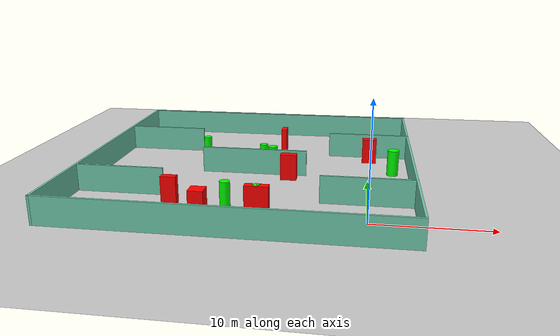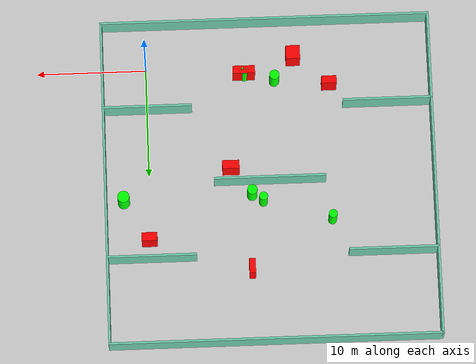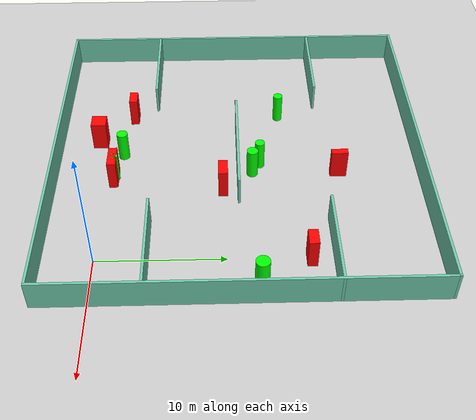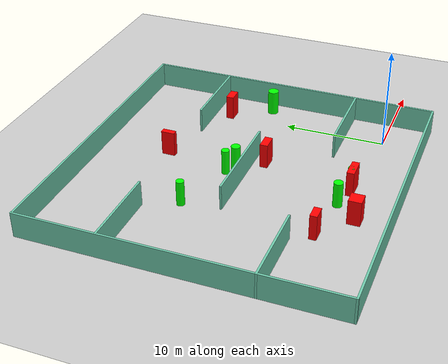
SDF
<sdf version="1.7">
 <world name="default">
  <light name="sun" type="directional">
   <pose>0 0 10 0 -0 0</pose>
   <diffuse>0.8 0.8 0.8 1</diffuse>
   <specular>0.2 0.2 0.2 1</specular>
   <attenuation>
    <range>1000</range>
    <constant>0.9</constant>
    <linear>0.01</linear>
    <quadratic>0.001</quadratic>
   </attenuation>
   <direction>-0.5 0.1 -0.9</direction>
   <spot><inner_angle>0</inner_angle><outer_angle>0</outer_angle><falloff>0</falloff></spot>
  </light>
  <model name="ground_plane">
   <static>1</static>
   <link name="link">
    <collision name="collision">
     <geometry><plane><normal>0 0 1</normal><size>100 100</size></plane></geometry>
     <surface>
      <contact><collide_bitmask>65535</collide_bitmask></contact>
      <friction><ode><mu>100</mu><mu2>50</mu2></ode></friction>
     </surface>
    </collision>
    <visual name="visual">
     <cast_shadows>0</cast_shadows>
     <geometry><plane><normal>0 0 1</normal><size>100 100</size></plane></geometry>
     <material>
      <script><uri>file://media/materials/scripts/gazebo.material</uri><name>Gazebo/Grey</name></script>
     </material>
    </visual>
   </link>
  </model>
  <gravity>0 0 -9.8</gravity>
  <magnetic_field>6e-06 2.3e-05 -4.2e-05</magnetic_field>
  <atmosphere type="adiabatic"/>
  <physics type="ode">
   <max_step_size>0.001</max_step_size>
   <real_time_factor>1</real_time_factor>
   <real_time_update_rate>1000</real_time_update_rate>
  </physics>
  <scene><ambient>0.4 0.4 0.4 1</ambient><background>0.7 0.7 0.7 1</background><shadows>1</shadows></scene>
  <spherical_coordinates>
   <surface_model>EARTH_WGS84</surface_model>
   <latitude_deg>0</latitude_deg>
   <longitude_deg>0</longitude_deg>
   <elevation>0</elevation>
   <heading_deg>0</heading_deg>
  </spherical_coordinates>
  <model name="my_base_walls">
   <link name="Wall_10">
    <collision name="Wall_10_Collision">
     <geometry><box><size>8.2 0.2 2.5</size></box></geometry>
     <pose>0 0 1.25 0 -0 0</pose>
    </collision>
    <visual name="Wall_10_Visual">
     <pose>0 0 1.25 0 -0 0</pose>
     <geometry><box><size>8.2 0.2 2.5</size></box></geometry>
     <material>
      <script><uri>file://media/materials/scripts/gazebo.material</uri><name>Gazebo/Grey</name></script>
      <ambient>0.435294 0.796078 0.67451 1</ambient>
     </material>
     <meta><layer>0</layer></meta>
    </visual>
    <pose>-11 -7 0 0 -0 0</pose>
   </link>
   <link name="Wall_12">
    <collision name="Wall_12_Collision">
     <geometry><box><size>8.2 0.2 2.5</size></box></geometry>
     <pose>0 0 1.25 0 -0 0</pose>
    </collision>
    <visual name="Wall_12_Visual">
     <pose>0 0 1.25 0 -0 0</pose>
     <geometry><box><size>8.2 0.2 2.5</size></box></geometry>
     <material>
      <script><uri>file://media/materials/scripts/gazebo.material</uri><name>Gazebo/Grey</name></script>
      <ambient>0.435294 0.796078 0.67451 1</ambient>
     </material>
     <meta><layer>0</layer></meta>
    </visual>
    <pose>-11 7 0 0 -0 0</pose>
   </link>
   <link name="Wall_14">
    <collision name="Wall_14_Collision">
     <geometry><box><size>8.2 0.2 2.5</size></box></geometry>
     <pose>0 0 1.25 0 -0 0</pose>
    </collision>
    <visual name="Wall_14_Visual">
     <pose>0 0 1.25 0 -0 0</pose>
     <geometry><box><size>8.2 0.2 2.5</size></box></geometry>
     <material>
      <script><uri>file://media/materials/scripts/gazebo.material</uri><name>Gazebo/Grey</name></script>
      <ambient>0.435294 0.796078 0.67451 1</ambient>
     </material>
     <meta><layer>0</layer></meta>
    </visual>
    <pose>11 7 0 0 -0 3.14159</pose>
   </link>
   <link name="Wall_16">
    <collision name="Wall_16_Collision">
     <geometry><box><size>10.2 0.2 2.5</size></box></geometry>
     <pose>0 0 1.25 0 -0 0</pose>
    </collision>
    <visual name="Wall_16_Visual">
     <pose>0 0 1.25 0 -0 0</pose>
     <geometry><box><size>10.2 0.2 2.5</size></box></geometry>
     <material>
      <script><uri>file://media/materials/scripts/gazebo.material</uri><name>Gazebo/Grey</name></script>
      <ambient>0.435294 0.796078 0.67451 1</ambient>
     </material>
     <meta><layer>0</layer></meta>
    </visual>
    <pose>0 0 0 0 -0 3.14159</pose>
   </link>
   <link name="Wall_2">
    <collision name="Wall_2_Collision">
     <geometry><box><size>30.2 0.2 2.5</size></box></geometry>
     <pose>0 0 1.25 0 -0 0</pose>
    </collision>
    <visual name="Wall_2_Visual">
     <pose>0 0 1.25 0 -0 0</pose>
     <geometry><box><size>30.2 0.2 2.5</size></box></geometry>
     <material>
      <script><uri>file://media/materials/scripts/gazebo.material</uri><name>Gazebo/Grey</name></script>
      <ambient>0.435294 0.796078 0.67451 1</ambient>
     </material>
     <meta><layer>0</layer></meta>
    </visual>
    <pose>0 -15 0 0 -0 3.14159</pose>
   </link>
   <link name="Wall_3">
    <collision name="Wall_3_Collision">
     <geometry><box><size>30.2 0.2 2.5</size></box></geometry>
     <pose>0 0 1.25 0 -0 0</pose>
    </collision>
    <visual name="Wall_3_Visual">
     <pose>0 0 1.25 0 -0 0</pose>
     <geometry><box><size>30.2 0.2 2.5</size></box></geometry>
     <material>
      <script><uri>file://media/materials/scripts/gazebo.material</uri><name>Gazebo/Grey</name></script>
      <ambient>0.435294 0.796078 0.67451 1</ambient>
     </material>
     <meta><layer>0</layer></meta>
    </visual>
    <pose>-15 0 0 0 -0 1.5708</pose>
   </link>
   <link name="Wall_4">
    <collision name="Wall_4_Collision">
     <geometry><box><size>30.2 0.2 2.5</size></box></geometry>
     <pose>0 0 1.25 0 -0 0</pose>
    </collision>
    <visual name="Wall_4_Visual">
     <pose>0 0 1.25 0 -0 0</pose>
     <geometry><box><size>30.2 0.2 2.5</size></box></geometry>
     <material>
      <script><uri>file://media/materials/scripts/gazebo.material</uri><name>Gazebo/Grey</name></script>
      <ambient>0.435294 0.796078 0.67451 1</ambient>
     </material>
     <meta><layer>0</layer></meta>
    </visual>
    <pose>0 15 0 0 -0 0</pose>
   </link>
   <link name="Wall_6">
    <collision name="Wall_6_Collision">
     <geometry><box><size>30.2 0.2 2.5</size></box></geometry>
     <pose>0 0 1.25 0 -0 0</pose>
    </collision>
    <visual name="Wall_6_Visual">
     <pose>0 0 1.25 0 -0 0</pose>
     <geometry><box><size>30.2 0.2 2.5</size></box></geometry>
     <material>
      <script><uri>file://media/materials/scripts/gazebo.material</uri><name>Gazebo/Grey</name></script>
      <ambient>0.435294 0.796078 0.67451 1</ambient>
     </material>
     <meta><layer>0</layer></meta>
    </visual>
    <pose>15 0 0 0 -0 1.5708</pose>
   </link>
   <link name="Wall_8">
    <collision name="Wall_8_Collision">
     <geometry><box><size>8.2 0.2 2.5</size></box></geometry>
     <pose>0 0 1.25 0 -0 0</pose>
    </collision>
    <visual name="Wall_8_Visual">
     <pose>0 0 1.25 0 -0 0</pose>
     <geometry><box><size>8.2 0.2 2.5</size></box></geometry>
     <material>
      <script><uri>file://media/materials/scripts/gazebo.material</uri><name>Gazebo/Grey</name></script>
      <ambient>0.435294 0.796078 0.67451 1</ambient>
     </material>
     <meta><layer>0</layer></meta>
    </visual>
    <pose>11 -7 0 0 -0 3.14159</pose>
   </link>
   <static>1</static>
   <pose>-11 11 0 0 -0 0</pose>
  </model>
  <model name="cylinder1">
   <static>1</static>
   <link name="link">
    <inertial>
     <mass>1</mass>
     <inertia><ixx>0.5</ixx><ixy>0</ixy><ixz>0</ixz><iyy>0.5</iyy><iyz>0</iyz><izz>1</izz></inertia>
    </inertial>
    <collision name="collision">
     <geometry><cylinder><radius>0.4571851082566261</radius><length>2.5</length></cylinder></geometry>
    </collision>
    <visual name="visual">
     <geometry><cylinder><radius>0.4571851082566261</radius><length>2.5</length></cylinder></geometry>
     <material>
      <ambient>0 1 0 1</ambient>
      <diffuse>0 1 0 1</diffuse>
      <specular>0.1 0.1 0.1 1</specular>
      <emissive>0 0 0 0</emissive>
     </material>
    </visual>
   </link>
   <pose>-9.340083961403629 12.171299836417678 1.25 0 0 0</pose>
  </model>
  <model name="cylinder2">
   <static>1</static>
   <link name="link">
    <inertial>
     <mass>1</mass>
     <inertia><ixx>0.5</ixx><ixy>0</ixy><ixz>0</ixz><iyy>0.5</iyy><iyz>0</iyz><izz>1</izz></inertia>
    </inertial>
    <collision name="collision">
     <geometry><cylinder><radius>0.4490737353560779</radius><length>2.5</length></cylinder></geometry>
    </collision>
    <visual name="visual">
     <geometry><cylinder><radius>0.4490737353560779</radius><length>2.5</length></cylinder></geometry>
     <material>
      <ambient>0 1 0 1</ambient>
      <diffuse>0 1 0 1</diffuse>
      <specular>0.1 0.1 0.1 1</specular>
      <emissive>0 0 0 0</emissive>
     </material>
    </visual>
   </link>
   <pose>-11.748437526756106 1.4261193176284115 1.25 0 0 0</pose>
  </model>
  <model name="cylinder3">
   <static>1</static>
   <link name="link">
    <inertial>
     <mass>1</mass>
     <inertia><ixx>0.5</ixx><ixy>0</ixy><ixz>0</ixz><iyy>0.5</iyy><iyz>0</iyz><izz>1</izz></inertia>
    </inertial>
    <collision name="collision">
     <geometry><cylinder><radius>0.39043766923811585</radius><length>2.5</length></cylinder></geometry>
    </collision>
    <visual name="visual">
     <geometry><cylinder><radius>0.39043766923811585</radius><length>2.5</length></cylinder></geometry>
     <material>
      <ambient>0 1 0 1</ambient>
      <diffuse>0 1 0 1</diffuse>
      <specular>0.1 0.1 0.1 1</specular>
      <emissive>0 0 0 0</emissive>
     </material>
    </visual>
   </link>
   <pose>-10.333566717237995 12.815428489142311 1.25 0 0 0</pose>
  </model>
  <model name="cylinder4">
   <static>1</static>
   <link name="link">
    <inertial>
     <mass>1</mass>
     <inertia><ixx>0.5</ixx><ixy>0</ixy><ixz>0</ixz><iyy>0.5</iyy><iyz>0</iyz><izz>1</izz></inertia>
    </inertial>
    <collision name="collision">
     <geometry><cylinder><radius>0.3386513919004802</radius><length>2.5</length></cylinder></geometry>
    </collision>
    <visual name="visual">
     <geometry><cylinder><radius>0.3386513919004802</radius><length>2.5</length></cylinder></geometry>
     <material>
      <ambient>0 1 0 1</ambient>
      <diffuse>0 1 0 1</diffuse>
      <specular>0.1 0.1 0.1 1</specular>
      <emissive>0 0 0 0</emissive>
     </material>
    </visual>
   </link>
   <pose>-9.026251584000736 0.9351691316099093 1.25 0 0 0</pose>
  </model>
  <model name="cylinder5">
   <static>1</static>
   <link name="link">
    <inertial>
     <mass>1</mass>
     <inertia><ixx>0.5</ixx><ixy>0</ixy><ixz>0</ixz><iyy>0.5</iyy><iyz>0</iyz><izz>1</izz></inertia>
    </inertial>
    <collision name="collision">
     <geometry><cylinder><radius>0.38972499255266607</radius><length>2.5</length></cylinder></geometry>
    </collision>
    <visual name="visual">
     <geometry><cylinder><radius>0.38972499255266607</radius><length>2.5</length></cylinder></geometry>
     <material>
      <ambient>0 1 0 1</ambient>
      <diffuse>0 1 0 1</diffuse>
      <specular>0.1 0.1 0.1 1</specular>
      <emissive>0 0 0 0</emissive>
     </material>
    </visual>
   </link>
   <pose>-16.576775488166923 14.686023185509708 1.25 0 0 0</pose>
  </model>
  <model name="cylinder6">
   <static>1</static>
   <link name="link">
    <inertial>
     <mass>1</mass>
     <inertia><ixx>0.5</ixx><ixy>0</ixy><ixz>0</ixz><iyy>0.5</iyy><iyz>0</iyz><izz>1</izz></inertia>
    </inertial>
    <collision name="collision">
     <geometry><cylinder><radius>0.5438255123653132</radius><length>2.5</length></cylinder></geometry>
    </collision>
    <visual name="visual">
     <geometry><cylinder><radius>0.5438255123653132</radius><length>2.5</length></cylinder></geometry>
     <material>
      <ambient>0 1 0 1</ambient>
      <diffuse>0 1 0 1</diffuse>
      <specular>0.1 0.1 0.1 1</specular>
      <emissive>0 0 0 0</emissive>
     </material>
    </visual>
   </link>
   <pose>2.3766707997833905 12.447641931298001 1.25 0 0 0</pose>
  </model>
  <model name="box1">
   <static>1</static>
   <link name="link">
    <inertial>
     <mass>1</mass>
     <inertia><ixx>0.083</ixx><ixy>0</ixy><ixz>0</ixz><iyy>0.083</iyy><iyz>0</iyz><izz>0.083</izz></inertia>
    </inertial>
    <collision name="collision">
     <geometry><box><size>1.2860857475932561 1.242602386794921 2.5</size></box></geometry>
    </collision>
    <visual name="visual">
     <geometry><box><size>1.2860857475932561 1.242602386794921 2.5</size></box></geometry>
     <material>
      <ambient>1 0 0 1</ambient>
      <diffuse>1 0 0 1</diffuse>
      <specular>0.1 0.1 0.1 1</specular>
      <emissive>0 0 0 0</emissive>
     </material>
    </visual>
    <sensor name="my_contact" type="contact">
     <contact><collision>box_collision</collision><topic>__default_topic__</topic></contact>
    </sensor>
   </link>
   <pose>-13.51523126516664 -0.6698469202601505 1.25 0 0 0</pose>
  </model>
  <model name="box2">
   <static>1</static>
   <link name="link">
    <inertial>
     <mass>1</mass>
     <inertia><ixx>0.083</ixx><ixy>0</ixy><ixz>0</ixz><iyy>0.083</iyy><iyz>0</iyz><izz>0.083</izz></inertia>
    </inertial>
    <collision name="collision">
     <geometry><box><size>1.5434103237527568 0.7641823055670915 2.5</size></box></geometry>
    </collision>
    <visual name="visual">
     <geometry><box><size>1.5434103237527568 0.7641823055670915 2.5</size></box></geometry>
     <material>
      <ambient>1 0 0 1</ambient>
      <diffuse>1 0 0 1</diffuse>
      <specular>0.1 0.1 0.1 1</specular>
      <emissive>0 0 0 0</emissive>
     </material>
    </visual>
    <sensor name="my_contact" type="contact">
     <contact><collision>box_collision</collision><topic>__default_topic__</topic></contact>
    </sensor>
   </link>
   <pose>-7.4702491111818965 9.754984807228919 1.25 0 0 0</pose>
  </model>
  <model name="box3">
   <static>1</static>
   <link name="link">
    <inertial>
     <mass>1</mass>
     <inertia><ixx>0.083</ixx><ixy>0</ixy><ixz>0</ixz><iyy>0.083</iyy><iyz>0</iyz><izz>0.083</izz></inertia>
    </inertial>
    <collision name="collision">
     <geometry><box><size>0.5570074900185086 1.3406489312136294 2.5</size></box></geometry>
    </collision>
    <visual name="visual">
     <geometry><box><size>0.5570074900185086 1.3406489312136294 2.5</size></box></geometry>
     <material>
      <ambient>1 0 0 1</ambient>
      <diffuse>1 0 0 1</diffuse>
      <specular>0.1 0.1 0.1 1</specular>
      <emissive>0 0 0 0</emissive>
     </material>
    </visual>
    <sensor name="my_contact" type="contact">
     <contact><collision>box_collision</collision><topic>__default_topic__</topic></contact>
    </sensor>
   </link>
   <pose>-9.09970690140791 19.243160077065088 1.25 0 0 0</pose>
  </model>
  <model name="box4">
   <static>1</static>
   <link name="link">
    <inertial>
     <mass>1</mass>
     <inertia><ixx>0.083</ixx><ixy>0</ixy><ixz>0</ixz><iyy>0.083</iyy><iyz>0</iyz><izz>0.083</izz></inertia>
    </inertial>
    <collision name="collision">
     <geometry><box><size>1.4000748895894444 0.7653887075724395 2.5</size></box></geometry>
    </collision>
    <visual name="visual">
     <geometry><box><size>1.4000748895894444 0.7653887075724395 2.5</size></box></geometry>
     <material>
      <ambient>1 0 0 1</ambient>
      <diffuse>1 0 0 1</diffuse>
      <specular>0.1 0.1 0.1 1</specular>
      <emissive>0 0 0 0</emissive>
     </material>
    </visual>
    <sensor name="my_contact" type="contact">
     <contact><collision>box_collision</collision><topic>__default_topic__</topic></contact>
    </sensor>
   </link>
   <pose>0.1279905688092704 16.235308283362674 1.25 0 0 0</pose>
  </model>
  <model name="box5">
   <static>1</static>
   <link name="link">
    <inertial>
     <mass>1</mass>
     <inertia><ixx>0.083</ixx><ixy>0</ixy><ixz>0</ixz><iyy>0.083</iyy><iyz>0</iyz><izz>0.083</izz></inertia>
    </inertial>
    <collision name="collision">
     <geometry><box><size>2.031745998780237 0.7054407545884641 2.5</size></box></geometry>
    </collision>
    <visual name="visual">
     <geometry><box><size>2.031745998780237 0.7054407545884641 2.5</size></box></geometry>
     <material>
      <ambient>1 0 0 1</ambient>
      <diffuse>1 0 0 1</diffuse>
      <specular>0.1 0.1 0.1 1</specular>
      <emissive>0 0 0 0</emissive>
     </material>
    </visual>
    <sensor name="my_contact" type="contact">
     <contact><collision>box_collision</collision><topic>__default_topic__</topic></contact>
    </sensor>
   </link>
   <pose>-8.968857291261397 0.8320848261266178 1.25 0 0 0</pose>
  </model>
  <model name="box6">
   <static>1</static>
   <link name="link">
    <inertial>
     <mass>1</mass>
     <inertia><ixx>0.083</ixx><ixy>0</ixy><ixz>0</ixz><iyy>0.083</iyy><iyz>0</iyz><izz>0.083</izz></inertia>
    </inertial>
    <collision name="collision">
     <geometry><box><size>1.353102680434461 0.6878452818100792 2.5</size></box></geometry>
    </collision>
    <visual name="visual">
     <geometry><box><size>1.353102680434461 0.6878452818100792 2.5</size></box></geometry>
     <material>
      <ambient>1 0 0 1</ambient>
      <diffuse>1 0 0 1</diffuse>
      <specular>0.1 0.1 0.1 1</specular>
      <emissive>0 0 0 0</emissive>
     </material>
    </visual>
    <sensor name="my_contact" type="contact">
     <contact><collision>box_collision</collision><topic>__default_topic__</topic></contact>
    </sensor>
   </link>
   <pose>-16.725432808722633 2.045914097830302 1.25 0 0 0</pose>
  </model>
 </world>
</sdf>
